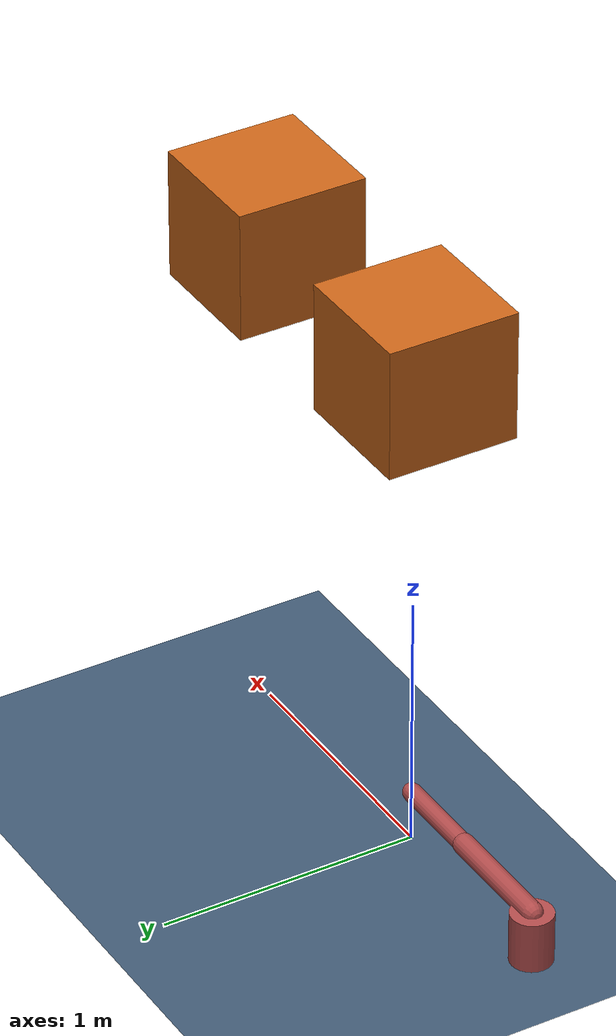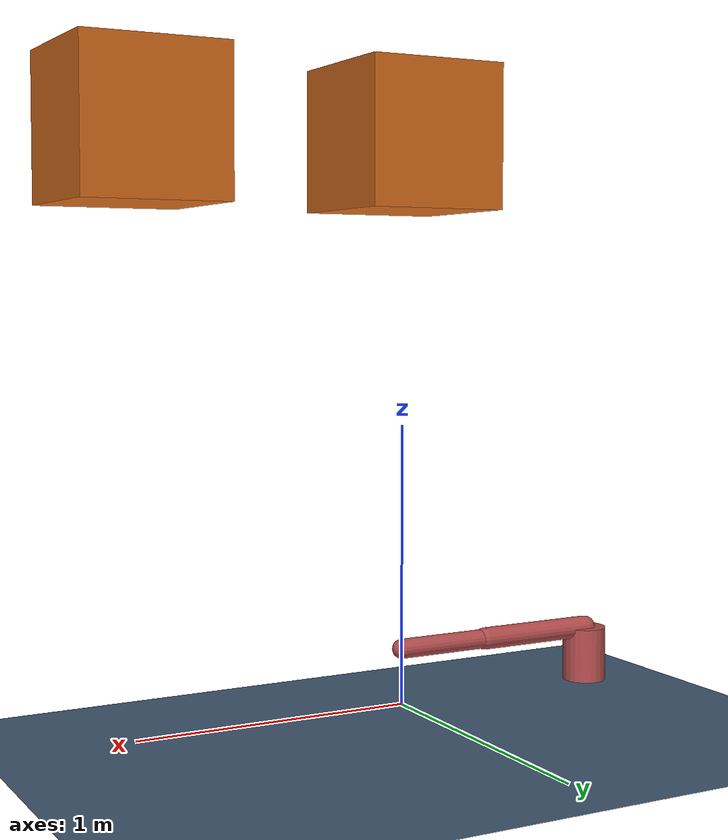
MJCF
<mujoco model="demo">
  <compiler angle="degree" coordinate="local"/>

  <!-- Gravity is enabled by default -->
  <option gravity="0 0 0" timestep="0.002">
    <flag warmstart="enable"/>
  </option>

  <!-- Visual settings -->
  <visual>
    <headlight ambient="0.5 0.5 0.5" diffuse="0.8 0.8 0.8"/>
    <rgba haze="0.15 0.25 0.35 1"/>  <!-- Haze for depth perception -->
    <global azimuth="10" elevation="-40"/>
  </visual>

  <!-- Assets: materials and textures -->
  <asset>
    <texture type="skybox" builtin="gradient" rgb1="0.3 0.5 0.7" rgb2="0 0 0" width="512" height="512"/>
    <texture name="grid" type="2d" builtin="checker" rgb1="0.2 0.3 0.4" rgb2="0.3 0.4 0.5" width="512" height="512"/>
    <material name="grid" texture="grid" texrepeat="1 1" texuniform="true" reflectance="0.2"/>
    <material name="robot" rgba="0.7 0.3 0.3 1"/>
    <material name="object" rgba="0.3 0.7 0.3 1"/>
  </asset>

  <!-- World body -->
  <worldbody>
    <!-- Floor -->
    <geom name="floor" type="plane" size="5 5 0.1" material="grid"/>

    <!-- Lighting -->
    <light pos="0 0 3" dir="0 0 -1" directional="true"/>

    <!-- Static objects -->
    <body name="static_box" pos="0 0 2">
      <geom name="box" type="box" size="0.25 0.25 0.25" rgba="0.8 0.4 0.1 1" mass="0.2"/>
    </body>

    <!-- Free-falling objects -->
    <!-- TODO -->
    <body name="free_falling_box" pos="1 0 2">
      <freejoint/>
      <geom name="free_falling_box" type="box" size="0.25 0.25 0.25" rgba="0.8 0.4 0.1 1" mass="0.2"/>
    </body>

    <!-- Simple 2-link robot arm -->
    <body name="arm_base" pos="-0.8 0 0.1">
      <geom name="base_geom" type="cylinder" size="0.08 0.1" material="robot" mass="1.0"/>

      <!-- Link 1 rotates around vertical axis -->
      <body name="link1" pos="0 0 0.1">
        <joint name="shoulder" type="hinge" axis="1 0 0" range="-120 120" damping="1.5"/>
        <geom name="link1_geom" type="capsule" fromto="0 0 0 0.45 0 0" size="0.04" material="robot" mass="0.5"/>

        <!-- Link 2 rotates in the same plane -->
        <body name="link2" pos="0.45 0 0">
          <joint name="elbow" type="hinge" axis="0 0 1" range="-150 150" damping="1.0"/>
          <geom name="link2_geom" type="capsule" fromto="0 0 0 0.35 0 0" size="0.035" material="robot" mass="0.35"/>
          <site name="ee_site" pos="0.35 0 0" size="0.02" rgba="0.2 0.9 0.9 1"/>
        </body>
      </body>
    </body>

  </worldbody>

  <actuator>
    <motor name="shoulder_motor" joint="shoulder" gear="40" ctrlrange="-1 1"/>
    <motor name="elbow_motor" joint="elbow" gear="30" ctrlrange="-1 1"/>
  </actuator>

</mujoco>
